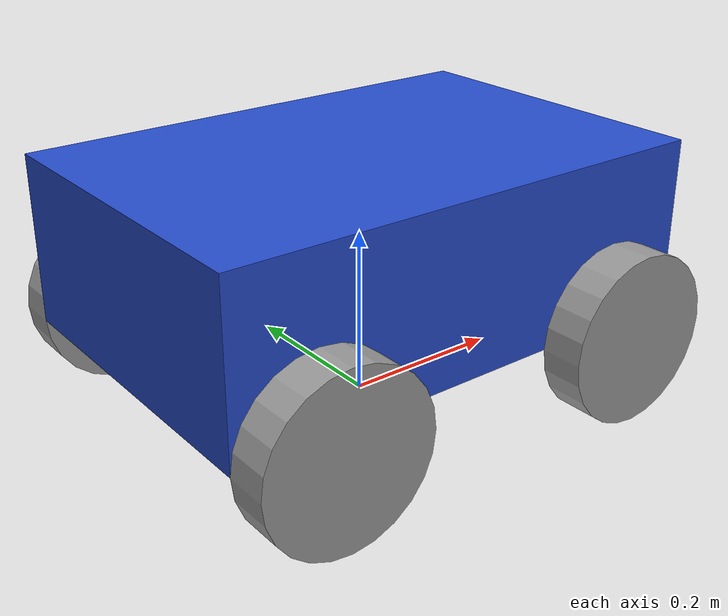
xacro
<?xml version="1.0"?>
<robot name="base_4wd" xmlns:xacro="http://www.ros.org/wiki/xacro">

    <xacro:include filename="common_properties.xacro" />
    <xacro:include filename="mobile_base_gazebo.xacro" />
    <xacro:include filename="mobile_base.xacro" />
    <xacro:include filename="mobile_base.ros2_control.xacro" />
    <xacro:include filename="camera.xacro" />
</robot>

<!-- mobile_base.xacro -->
<robot xmlns:xacro="http://www.ros.org/wiki/xacro">

    <xacro:property name="base_length" value="0.6" />
    <xacro:property name="base_width" value="0.4" />
    <xacro:property name="base_height" value="0.2" />
    <xacro:property name="wheel_radius" value="0.1" />
    <xacro:property name="wheel_length" value="0.05" />

    <link name="base_footprint" />

    <link name="base_link">
        <visual>
            <geometry>
                <box size="${base_length} ${base_width} ${base_height}" />
            </geometry>
            <origin xyz="0 0 ${base_height / 2.0}" rpy="0 0 0" />
            <material name="blue" />
        </visual>
    </link>

    <link name="back_right_wheel_link">
        <visual>
            <geometry>
                <cylinder radius="${wheel_radius}" length="${wheel_length}" />
            </geometry>
            <origin xyz="0 0 0" rpy="${pi / 2.0} 0 0" />
            <material name="grey" />
        </visual>
    </link>

    <link name="back_left_wheel_link">
        <visual>
            <geometry>
                <cylinder radius="${wheel_radius}" length="${wheel_length}" />
            </geometry>
            <origin xyz="0 0 0" rpy="${pi / 2.0} 0 0" />
            <material name="grey" />
        </visual>
    </link>

    <link name="front_right_wheel_link">
        <visual>
            <geometry>
                <cylinder radius="${wheel_radius}" length="${wheel_length}" />
            </geometry>
            <origin xyz="0 0 0" rpy="${pi / 2.0} 0 0" />
            <material name="grey" />
        </visual>
    </link>

    <link name="front_left_wheel_link">
        <visual>
            <geometry>
                <cylinder radius="${wheel_radius}" length="${wheel_length}" />
            </geometry>
            <origin xyz="0 0 0" rpy="${pi / 2.0} 0 0" />
            <material name="grey" />
        </visual>
    </link>

    <joint name="base_joint" type="fixed">
        <parent link="base_footprint" />
        <child link="base_link" />
        <origin xyz="0 0 ${wheel_radius}" rpy="0 0 0"/>
    </joint>

    <joint name="back_right_wheel_joint" type="continuous">
        <parent link="base_link" />
        <child link="back_right_wheel_link" />
        <origin xyz="${-base_length / 3.0} ${-(base_width + wheel_length) / 2.0} 0" rpy="0 0 0" />
        <axis xyz="0 1 0" />
    </joint>

    <joint name="back_left_wheel_joint" type="continuous">
        <parent link="base_link" />
        <child link="back_left_wheel_link" />
        <origin xyz="${-base_length / 3.0} ${(base_width + wheel_length) / 2.0} 0" rpy="0 0 0" />
        <axis xyz="0 1 0" />
    </joint>

    <joint name="front_right_wheel_joint" type="continuous">
        <parent link="base_link" />
        <child link="front_right_wheel_link" />
        <origin xyz="${base_length / 3.0} ${-(base_width + wheel_length) / 2.0} 0" rpy="0 0 0" />
        <axis xyz="0 1 0" />
    </joint>

    <joint name="front_left_wheel_joint" type="continuous">
        <parent link="base_link" />
        <child link="front_left_wheel_link" />
        <origin xyz="${base_length / 3.0} ${(base_width + wheel_length) / 2.0} 0" rpy="0 0 0" />
        <axis xyz="0 1 0" />
    </joint>

</robot>

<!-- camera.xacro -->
<robot name="yardguard" xmlns:xacro="http://www.ros.org/wiki/xacro">

    <xacro:property name="camera_length" value="0.01" />
    <xacro:property name="camera_width" value="0.05" />
    <xacro:property name="camera_height" value="0.05" />

    <link name="camera_link">
        <visual>
            <geometry>
                <box size="${camera_length} ${camera_width} ${camera_height}" />
            </geometry>
            <material name="grey" />
        </visual>
        <collision>
            <geometry>
                <box size="${camera_length} ${camera_width} ${camera_height}" />
            </geometry>
        </collision>
    </link>

    <joint name="base_camera_joint" type="fixed">
        <parent link="base_link" />
        <child link="camera_link" />
        <origin xyz="${(base_length + camera_length) / 2.0} 0 ${base_height / 2.0}" rpy="0 0 0" />
    </joint>
</robot>
